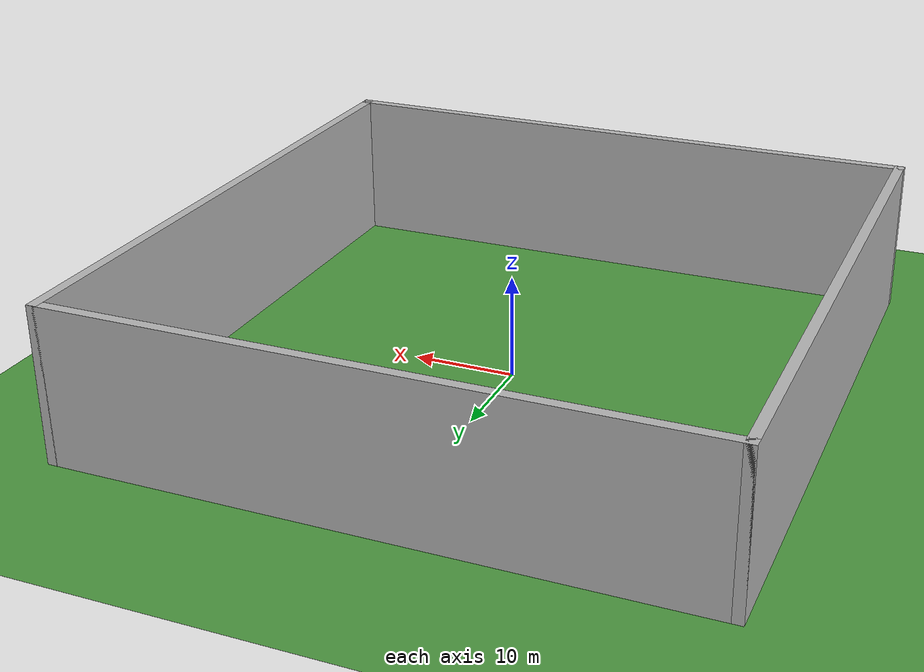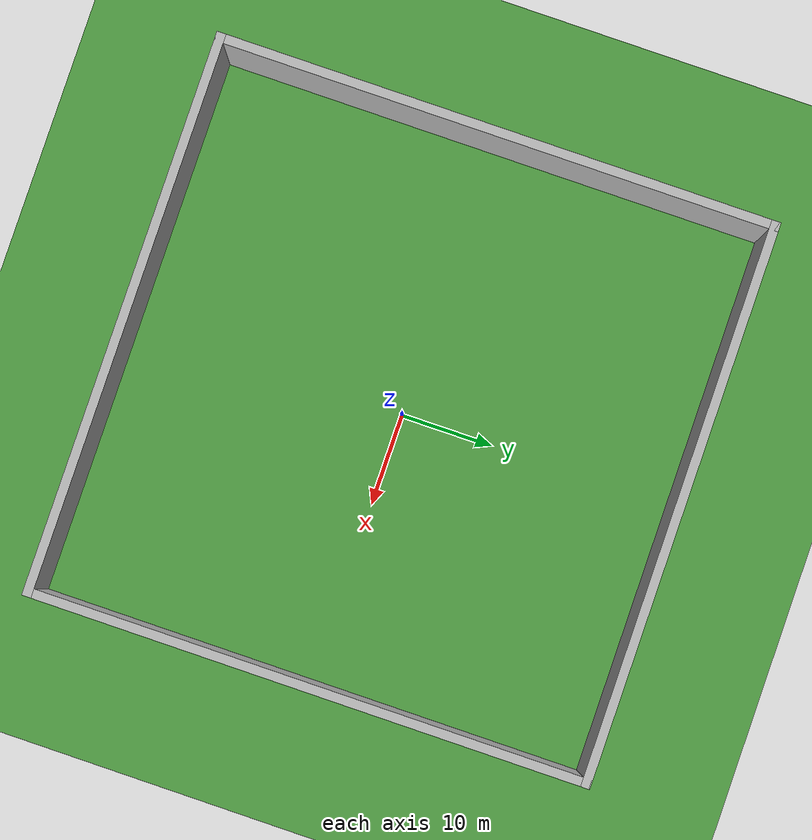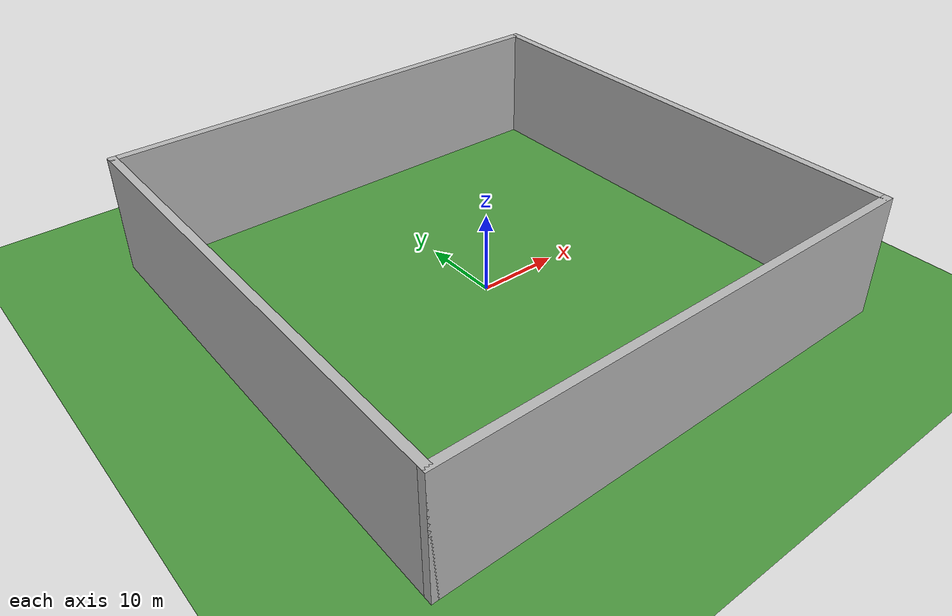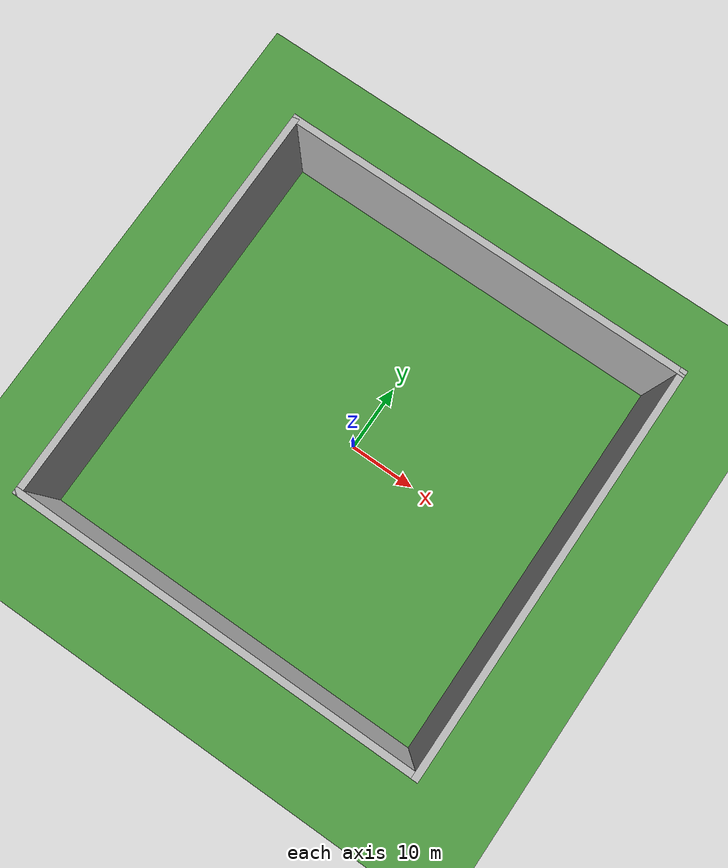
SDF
<sdf version="1.5">
 <world name="default">
  <plugin name="mrs_gazebo_static_transform_republisher_plugin" filename="libMrsGazeboCommonResources_StaticTransformRepublisher.so"/>
  <spherical_coordinates>
   <surface_model>EARTH_WGS84</surface_model>
   <latitude_deg>47.397743</latitude_deg>
   <longitude_deg>8.545594</longitude_deg>
   <elevation>0.0</elevation>
   <heading_deg>0</heading_deg>
  </spherical_coordinates>
  <physics name="default_physics" default="0" type="ode">
   <gravity>0 0 -9.8066</gravity>
   <ode>
    <solver>
     <type>quick</type>
     <iters>50</iters>
     <sor>1.0</sor>
     <use_dynamic_moi_rescaling>0</use_dynamic_moi_rescaling>
    </solver>
    <constraints>
     <cfm>0</cfm>
     <erp>0.2</erp>
     <contact_max_correcting_vel>1000</contact_max_correcting_vel>
     <contact_surface_layer>0.001</contact_surface_layer>
    </constraints>
   </ode>
   <max_step_size>0.004</max_step_size>
   <real_time_factor>1</real_time_factor>
   <real_time_update_rate>250</real_time_update_rate>
   <magnetic_field>6.0e-06 2.3e-05 -4.2e-05</magnetic_field>
  </physics>
  <scene><shadows>false</shadows></scene>
  <light type="directional" name="sun">
   <pose>250 250 600 0 0 0</pose>
   <diffuse>0.8 0.8 0.8 1</diffuse>
   <specular>0.2 0.2 0.2 1</specular>
   <attenuation>
    <range>1000</range>
    <constant>0.9</constant>
    <linear>0.01</linear>
    <quadratic>0.001</quadratic>
   </attenuation>
   <direction>0 0 -1</direction>
  </light>
  <model name="grey_wall4">
   <pose>0 30 7.5 0 0 0</pose>
   <static>true</static>
   <link name="link">
    <collision name="collision"><geometry><box><size>61 1 15</size></box></geometry></collision>
    <visual name="visual"><geometry><box><size>61 1 15</size></box></geometry></visual>
   </link>
  </model>
  <model name="grey_wall3">
   <pose>0 -30 7.5 0 0 0</pose>
   <static>true</static>
   <link name="link">
    <collision name="collision"><geometry><box><size>61 1 15</size></box></geometry></collision>
    <visual name="visual"><geometry><box><size>61 1 15</size></box></geometry></visual>
   </link>
  </model>
  <model name="grey_wall2">
   <pose>30 0 7.5 0 0 1.5708</pose>
   <static>true</static>
   <link name="link">
    <collision name="collision"><geometry><box><size>61 1 15</size></box></geometry></collision>
    <visual name="visual"><geometry><box><size>61 1 15</size></box></geometry></visual>
   </link>
  </model>
  <model name="grey_wall1">
   <pose>-30 0 7.5 0 0 1.5708</pose>
   <static>true</static>
   <link name="link">
    <collision name="collision"><geometry><box><size>61 1 15</size></box></geometry></collision>
    <visual name="visual"><geometry><box><size>61 1 15</size></box></geometry></visual>
   </link>
  </model>
  <model name="ground_plane">
   <static>true</static>
   <link name="link">
    <collision name="collision">
     <geometry><plane><normal>0 0 1</normal><size>60 60</size></plane></geometry>
     <surface><friction><ode><mu>1</mu><mu2>1</mu2></ode></friction></surface>
    </collision>
    <visual name="grass">
     <cast_shadows>false</cast_shadows>
     <geometry><plane><normal>0 0 1</normal><size>60 60</size></plane></geometry>
     <material>
      <script><uri>file://media/materials/scripts/Gazebo.material</uri><name>Gazebo/Grass</name></script>
     </material>
    </visual>
   </link>
  </model>
  <plugin name="mrs_gazebo_rviz_cam_synchronizer" filename="libMrsGazeboCommonResources_RvizCameraSynchronizer.so">
   <target_frame_id>gazebo_user_camera</target_frame_id>
   <world_origin_frame_id>uav1/gps_origin</world_origin_frame_id>
   <frame_to_follow>uav1::base_link</frame_to_follow>
  </plugin>
 </world>
</sdf>
